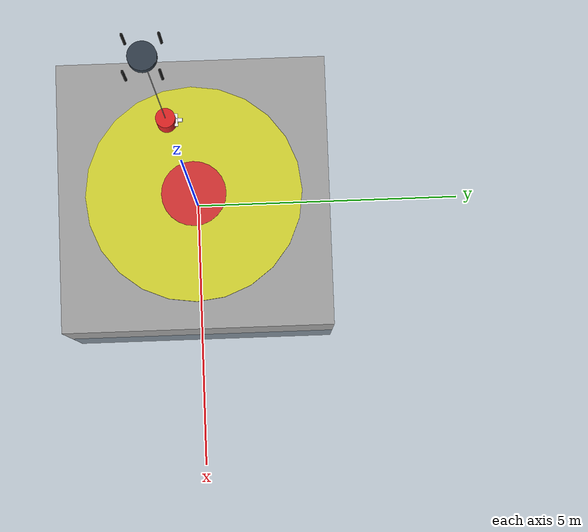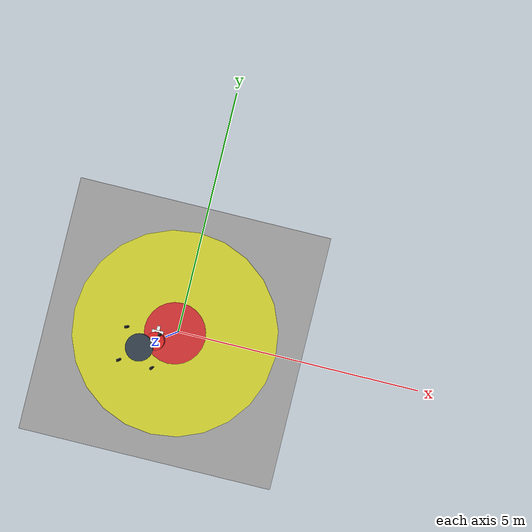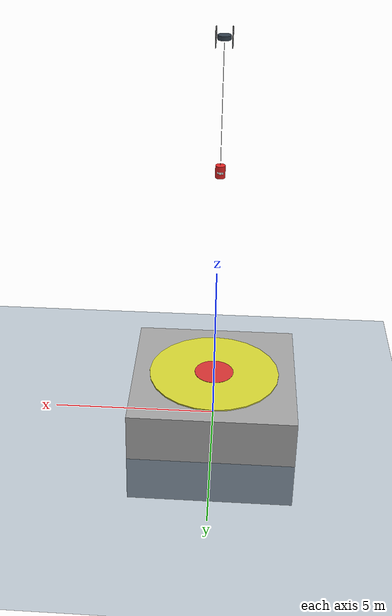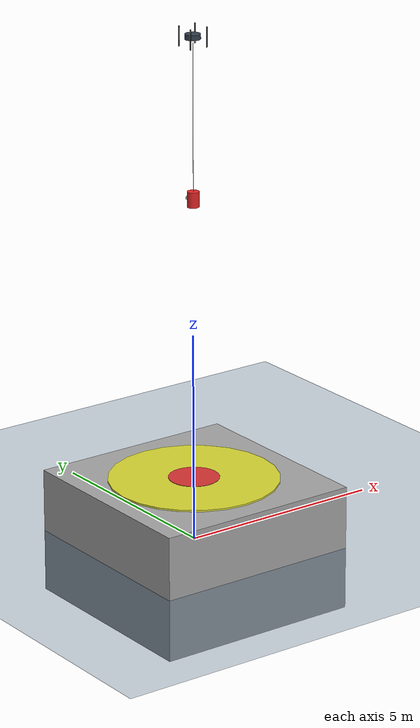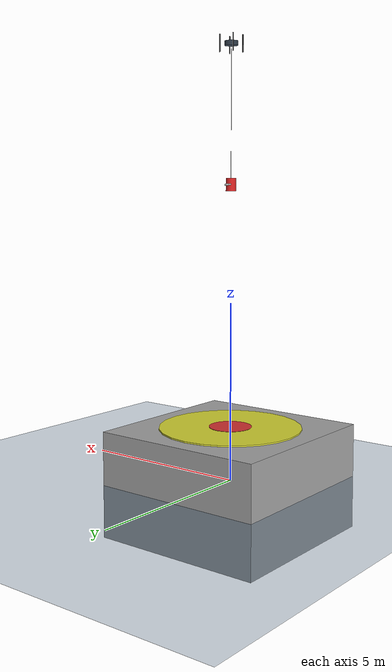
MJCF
<mujoco model="skyhydro_flood_relief_uav">
  <compiler angle="radian" coordinate="local"/>
  <option gravity="0 0 -9.81" timestep="0.002" integrator="RK4"/>

  <visual>
    <headlight ambient="0.45 0.45 0.45" diffuse="0.8 0.8 0.8" specular="0.2 0.2 0.2"/>
    <rgba fog="0.85 0.88 0.92 1"/>
  </visual>

  <default>
    <joint damping="0.1" armature="0.005"/>
    <geom friction="0.7 0.01 0.001" solref="0.01 1" solimp="0.9 0.95 0.001"/>
    <motor ctrlrange="-40 40" ctrllimited="true"/>
  </default>

  <worldbody>
    <!-- Flood Water Surface Simulation -->
    <geom name="flood_water" type="plane" size="25 25 0.1" rgba="0.18 0.32 0.45 0.85"/>

    <!-- Isolated Rooftop Drop Target Structure -->
    <body name="rooftop_target" pos="0 0 1.5">
      <geom name="building_block" type="box" size="2.5 2.5 1.5" pos="0 0 -1.5" rgba="0.65 0.65 0.65 1"/>
      <geom name="drop_zone_outer" type="cylinder" size="2.0 0.02" pos="0 0 0.02" rgba="0.85 0.85 0.2 1"/>
      <geom name="drop_zone_bullseye" type="cylinder" size="0.6 0.025" pos="0 0 0.025" rgba="0.85 0.2 0.2 1"/>
      <site name="target_center" pos="0 0 0.04"/>
    </body>

    <!-- Multirotor UAV Airframe -->
    <body name="uav_chassis" pos="0 0 12.0">
      <freejoint name="uav_root_joint"/>
      <!-- Central Carbon Fiber Hub -->
      <geom name="fuselage" type="cylinder" size="0.18 0.06" rgba="0.2 0.25 0.3 1" mass="2.2"/>

      <!-- 4 Quadrotor Arms -->
      <geom name="arm1" type="capsule" size="0.018 0.22" pos="0.22 0.22 0" quat="0.9239 0 0 0.3827" rgba="0.1 0.1 0.1 1" mass="0.25"/>
      <geom name="arm2" type="capsule" size="0.018 0.22" pos="-0.22 0.22 0" quat="0.3827 0 0 0.9239" rgba="0.1 0.1 0.1 1" mass="0.25"/>
      <geom name="arm3" type="capsule" size="0.018 0.22" pos="-0.22 -0.22 0" quat="0.3827 0 0 -0.9239" rgba="0.1 0.1 0.1 1" mass="0.25"/>
      <geom name="arm4" type="capsule" size="0.018 0.22" pos="0.22 -0.22 0" quat="0.9239 0 0 -0.3827" rgba="0.1 0.1 0.1 1" mass="0.25"/>

      <!-- Downward Vision Sensor Site -->
      <site name="downward_cam_site" pos="0 0 -0.06" quat="0.7071 0.7071 0 0"/>

      <!-- Winch Deployment Anchor -->
      <site name="winch_anchor" pos="0 0 -0.08"/>

      <!-- Cable Link (Suspended Slung Load) -->
      <body name="winch_cable" pos="0 0 -0.15">
        <joint name="cable_pitch" type="hinge" axis="0 1 0" range="-1.2 1.2"/>
        <joint name="cable_roll" type="hinge" axis="1 0 0" range="-1.2 1.2"/>
        <geom name="cable_geom" type="capsule" size="0.006 1.8" pos="0 0 -1.8" rgba="0.7 0.7 0.7 0.8" mass="0.15"/>

        <!-- Medical Relief Canister Payload -->
        <body name="relief_payload" pos="0 0 -3.6">
          <geom name="payload_box" type="cylinder" size="0.14 0.18" rgba="0.9 0.15 0.15 1" mass="1.5"/>
          <geom name="cross_h" type="box" size="0.09 0.025 0.02" pos="0 0.142 0" rgba="1 1 1 1" mass="0.01"/>
          <geom name="cross_v" type="box" size="0.025 0.09 0.02" pos="0 0.142 0" rgba="1 1 1 1" mass="0.01"/>
          <site name="payload_sensor" pos="0 0 0"/>
        </body>
      </body>
    </body>
  </worldbody>

  <actuator>
    <!-- Quadrotor Motor Thrusts -->
    <motor name="rotor1_thrust" body="uav_chassis" gear="0 0 1 0 0 0" ctrlrange="0 35"/>
    <motor name="rotor2_thrust" body="uav_chassis" gear="0 0 1 0 0 0" ctrlrange="0 35"/>
    <motor name="rotor3_thrust" body="uav_chassis" gear="0 0 1 0 0 0" ctrlrange="0 35"/>
    <motor name="rotor4_thrust" body="uav_chassis" gear="0 0 1 0 0 0" ctrlrange="0 35"/>
  </actuator>

  <sensor>
    <accelerometer name="uav_accel" site="downward_cam_site"/>
    <gyro name="uav_gyro" site="downward_cam_site"/>
  </sensor>
</mujoco>
